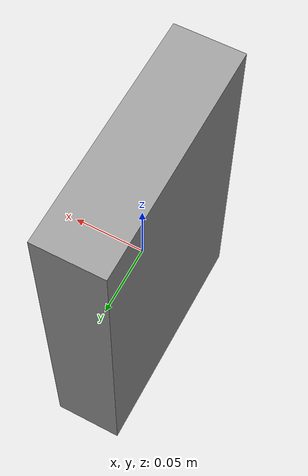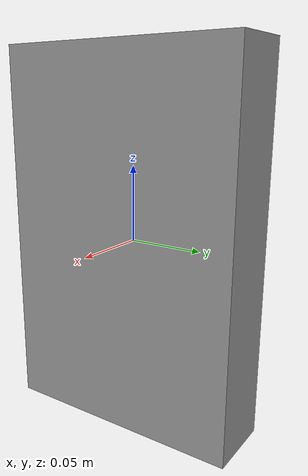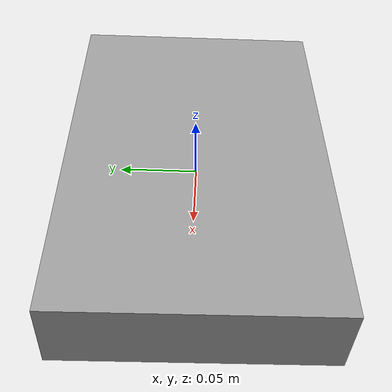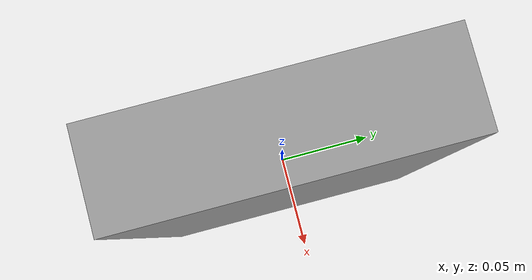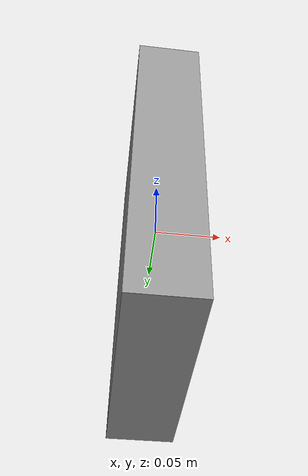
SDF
<?xml version='1.0'?>
<sdf version='1.7'>
  <model name='library_book'>
    <link name='link_0_clone'>
      <inertial>
        <mass>0.00204756</mass>
        <inertia>
          <ixx>1.57386e-05</ixx>
          <ixy>0</ixy>
          <ixz>0</ixz>
          <iyy>1.13613e-05</iyy>
          <iyz>0</iyz>
          <izz>5.16448e-06</izz>
        </inertia>
        <pose>0 0 0 0 -0 0</pose>
      </inertial>
      <pose>-4e-06 0 -1e-06 0 -0 0</pose>
      <visual name='visual'>
        <pose>0 0 0 0 -0 0</pose>
        <geometry>
          <box>
            <size>0.048027 0.167214 0.253531</size>
          </box>
        </geometry>
        <material>
          <lighting>1</lighting>
          <script>
            <uri>file://media/materials/scripts/gazebo.material</uri>
            <name>Gazebo/Grey</name>
          </script>
          <shader type='pixel'/>
        </material>
        <transparency>0</transparency>
        <cast_shadows>1</cast_shadows>
      </visual>
      <collision name='collision'>
        <laser_retro>0</laser_retro>
        <max_contacts>10</max_contacts>
        <pose>0 0 0 0 -0 0</pose>
        <geometry>
          <box>
            <size>0.048027 0.167214 0.253531</size>
          </box>
        </geometry>
        <surface>
          <friction>
            <ode>
              <mu>1</mu>
              <mu2>1</mu2>
              <fdir1>0 0 0</fdir1>
              <slip1>0</slip1>
              <slip2>0</slip2>
            </ode>
            <torsional>
              <coefficient>1</coefficient>
              <patch_radius>0</patch_radius>
              <surface_radius>0</surface_radius>
              <use_patch_radius>1</use_patch_radius>
              <ode>
                <slip>0</slip>
              </ode>
            </torsional>
          </friction>
          <bounce>
            <restitution_coefficient>0</restitution_coefficient>
            <threshold>1e+06</threshold>
          </bounce>
          <contact>
            <collide_without_contact>0</collide_without_contact>
            <collide_without_contact_bitmask>1</collide_without_contact_bitmask>
            <collide_bitmask>1</collide_bitmask>
            <ode>
              <soft_cfm>0</soft_cfm>
              <soft_erp>0.2</soft_erp>
              <kp>1e+13</kp>
              <kd>1</kd>
              <max_vel>0.01</max_vel>
              <min_depth>0</min_depth>
            </ode>
            <bullet>
              <split_impulse>1</split_impulse>
              <split_impulse_penetration_threshold>-0.01</split_impulse_penetration_threshold>
              <soft_cfm>0</soft_cfm>
              <soft_erp>0.2</soft_erp>
              <kp>1e+13</kp>
              <kd>1</kd>
            </bullet>
          </contact>
        </surface>
      </collision>
    </link>
    <static>0</static>
    <allow_auto_disable>1</allow_auto_disable>
  </model>
</sdf>
